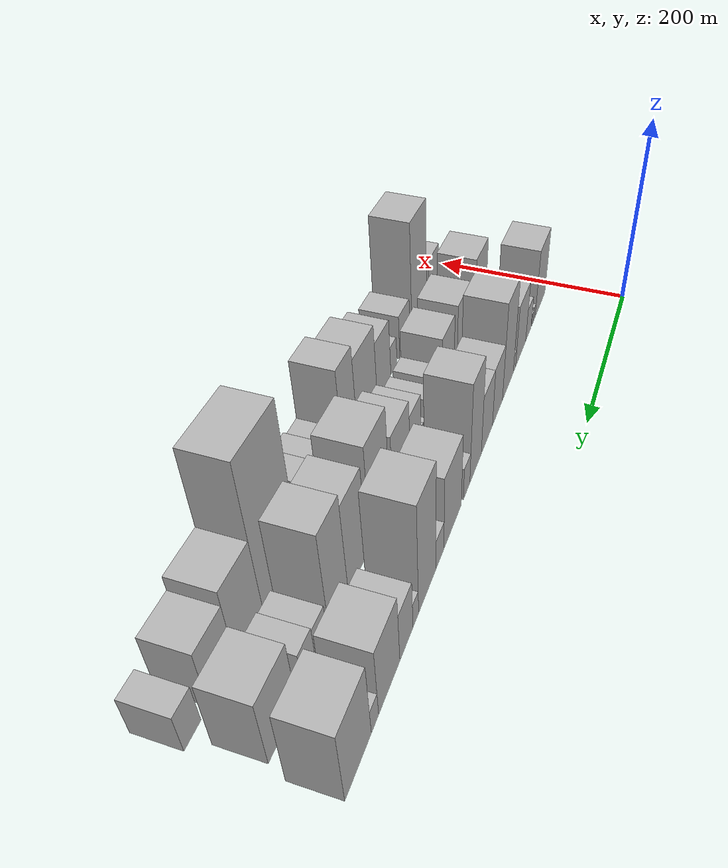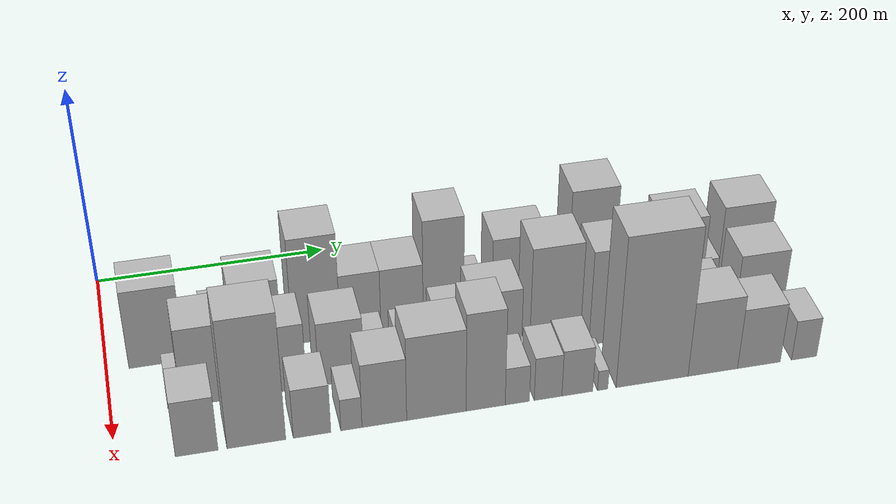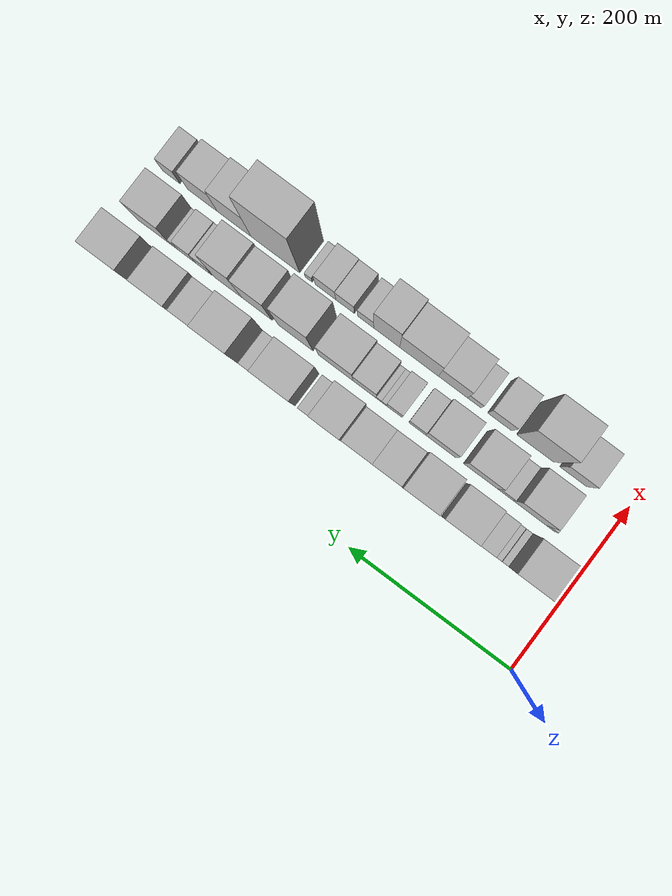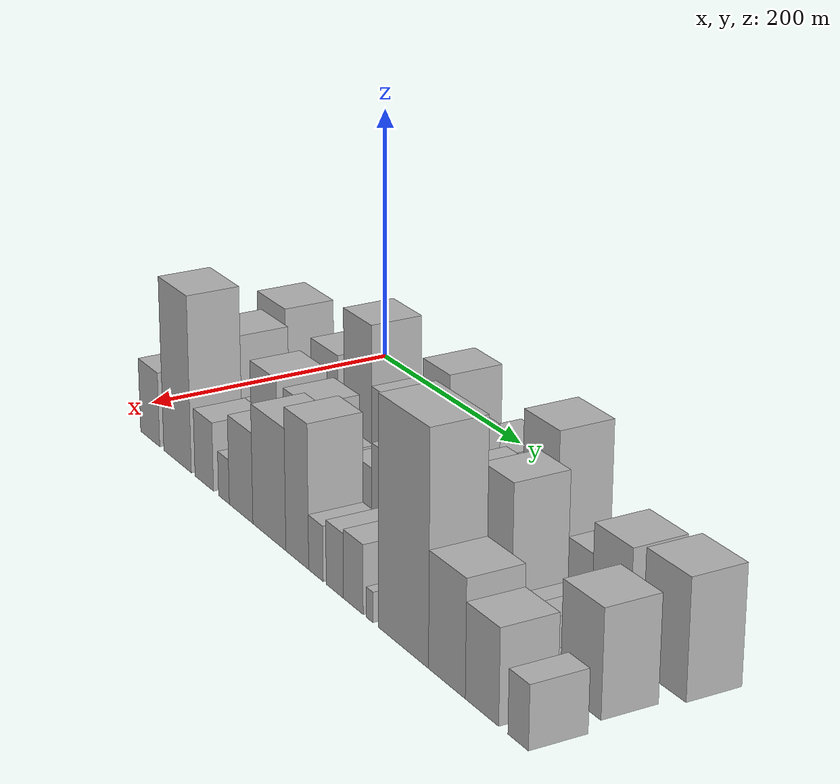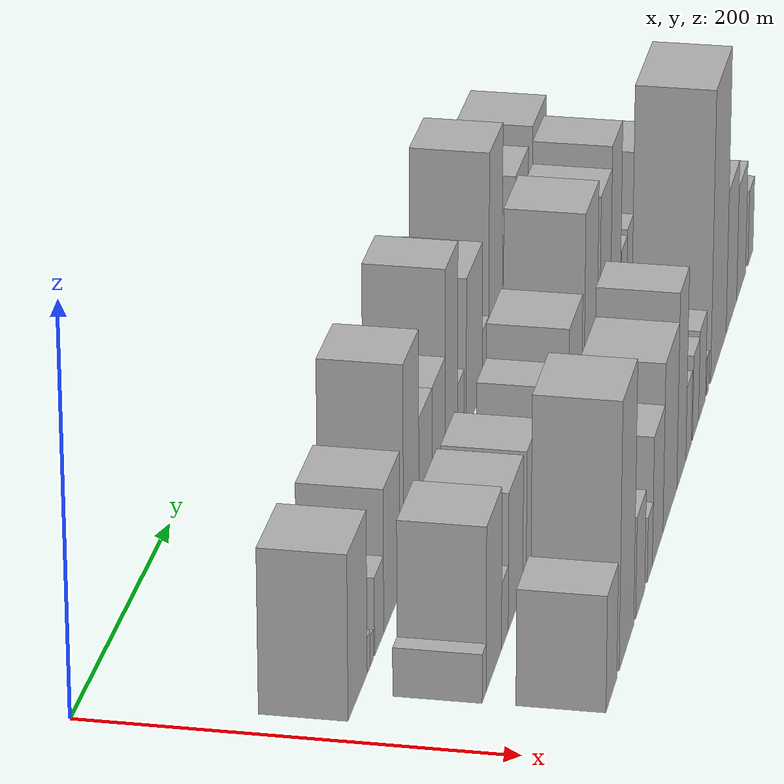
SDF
<sdf version="1.6">
 <world name="default">
  <model name="building_17">
   <static>1</static>
   <pose>100.0000 41.3504 0 0.000000 0.000000 0.000000</pose>
   <link name="link">
    <pose>0 0 40.50 0 0 0</pose>
    <collision name="collision"><geometry><box><size>40.0000 45.6313 81.0000</size></box></geometry></collision>
    <visual name="visual">
     <cast_shadows>0</cast_shadows>
     <geometry><box><size>40.0000 45.6313 81.0000</size></box></geometry>
     <material>
      <script>
       <uri>model://HANNAS_wall/materials/scripts</uri>
       <uri>model://HANNAS_wall/materials/textures</uri>
       <name>vrc/HANNAS_wall</name>
      </script>
     </material>
    </visual>
   </link>
  </model>
  <model name="building_18">
   <static>1</static>
   <pose>100.0000 67.9981 0 0.000000 0.000000 0.000000</pose>
   <link name="link">
    <pose>0 0 9.00 0 0 0</pose>
    <collision name="collision"><geometry><box><size>40.0000 7.6641 18.0000</size></box></geometry></collision>
    <visual name="visual">
     <cast_shadows>0</cast_shadows>
     <geometry><box><size>40.0000 7.6641 18.0000</size></box></geometry>
     <material>
      <script>
       <uri>model://HANNAS_wall/materials/scripts</uri>
       <uri>model://HANNAS_wall/materials/textures</uri>
       <name>vrc/HANNAS_wall</name>
      </script>
     </material>
    </visual>
   </link>
  </model>
  <model name="building_19">
   <static>1</static>
   <pose>100.0000 75.4089 0 0.000000 0.000000 0.000000</pose>
   <link name="link">
    <pose>0 0 7.50 0 0 0</pose>
    <collision name="collision"><geometry><box><size>40.0000 7.1576 15.0000</size></box></geometry></collision>
    <visual name="visual">
     <cast_shadows>0</cast_shadows>
     <geometry><box><size>40.0000 7.1576 15.0000</size></box></geometry>
     <material>
      <script>
       <uri>model://HANNAS_wall/materials/scripts</uri>
       <uri>model://HANNAS_wall/materials/textures</uri>
       <name>vrc/HANNAS_wall</name>
      </script>
     </material>
    </visual>
   </link>
  </model>
  <model name="building_20">
   <static>1</static>
   <pose>100.0000 93.3953 0 0.000000 0.000000 0.000000</pose>
   <link name="link">
    <pose>0 0 19.50 0 0 0</pose>
    <collision name="collision"><geometry><box><size>40.0000 22.8153 39.0000</size></box></geometry></collision>
    <visual name="visual">
     <cast_shadows>0</cast_shadows>
     <geometry><box><size>40.0000 22.8153 39.0000</size></box></geometry>
     <material>
      <script>
       <uri>model://HANNAS_wall/materials/scripts</uri>
       <uri>model://HANNAS_wall/materials/textures</uri>
       <name>vrc/HANNAS_wall</name>
      </script>
     </material>
    </visual>
   </link>
  </model>
  <model name="building_21">
   <static>1</static>
   <pose>100.0000 125.3801 0 0.000000 0.000000 0.000000</pose>
   <link name="link">
    <pose>0 0 36.00 0 0 0</pose>
    <collision name="collision"><geometry><box><size>40.0000 41.1543 72.0000</size></box></geometry></collision>
    <visual name="visual">
     <cast_shadows>0</cast_shadows>
     <geometry><box><size>40.0000 41.1543 72.0000</size></box></geometry>
     <material>
      <script>
       <uri>model://HANNAS_wall/materials/scripts</uri>
       <uri>model://HANNAS_wall/materials/textures</uri>
       <name>vrc/HANNAS_wall</name>
      </script>
     </material>
    </visual>
   </link>
  </model>
  <model name="building_22">
   <static>1</static>
   <pose>100.0000 150.4188 0 0.000000 0.000000 0.000000</pose>
   <link name="link">
    <pose>0 0 10.50 0 0 0</pose>
    <collision name="collision"><geometry><box><size>40.0000 8.9230 21.0000</size></box></geometry></collision>
    <visual name="visual">
     <cast_shadows>0</cast_shadows>
     <geometry><box><size>40.0000 8.9230 21.0000</size></box></geometry>
     <material>
      <script>
       <uri>model://HANNAS_wall/materials/scripts</uri>
       <uri>model://HANNAS_wall/materials/textures</uri>
       <name>vrc/HANNAS_wall</name>
      </script>
     </material>
    </visual>
   </link>
  </model>
  <model name="building_23">
   <static>1</static>
   <pose>100.0000 175.1559 0 0.000000 0.000000 0.000000</pose>
   <link name="link">
    <pose>0 0 55.50 0 0 0</pose>
    <collision name="collision"><geometry><box><size>40.0000 40.5513 111.0000</size></box></geometry></collision>
    <visual name="visual">
     <cast_shadows>0</cast_shadows>
     <geometry><box><size>40.0000 40.5513 111.0000</size></box></geometry>
     <material>
      <script>
       <uri>model://HANNAS_wall/materials/scripts</uri>
       <uri>model://HANNAS_wall/materials/textures</uri>
       <name>vrc/HANNAS_wall</name>
      </script>
     </material>
    </visual>
   </link>
  </model>
  <model name="building_24">
   <static>1</static>
   <pose>100.0000 212.8494 0 0.000000 0.000000 0.000000</pose>
   <link name="link">
    <pose>0 0 33.00 0 0 0</pose>
    <collision name="collision"><geometry><box><size>40.0000 34.8357 66.0000</size></box></geometry></collision>
    <visual name="visual">
     <cast_shadows>0</cast_shadows>
     <geometry><box><size>40.0000 34.8357 66.0000</size></box></geometry>
     <material>
      <script>
       <uri>model://HANNAS_wall/materials/scripts</uri>
       <uri>model://HANNAS_wall/materials/textures</uri>
       <name>vrc/HANNAS_wall</name>
      </script>
     </material>
    </visual>
   </link>
  </model>
  <model name="building_25">
   <static>1</static>
   <pose>100.0000 248.5443 0 0.000000 0.000000 0.000000</pose>
   <link name="link">
    <pose>0 0 33.00 0 0 0</pose>
    <collision name="collision"><geometry><box><size>40.0000 36.5541 66.0000</size></box></geometry></collision>
    <visual name="visual">
     <cast_shadows>0</cast_shadows>
     <geometry><box><size>40.0000 36.5541 66.0000</size></box></geometry>
     <material>
      <script>
       <uri>model://HANNAS_wall/materials/scripts</uri>
       <uri>model://HANNAS_wall/materials/textures</uri>
       <name>vrc/HANNAS_wall</name>
      </script>
     </material>
    </visual>
   </link>
  </model>
  <model name="building_26">
   <static>1</static>
   <pose>100.0000 284.4584 0 0.000000 0.000000 0.000000</pose>
   <link name="link">
    <pose>0 0 55.50 0 0 0</pose>
    <collision name="collision"><geometry><box><size>40.0000 35.2741 111.0000</size></box></geometry></collision>
    <visual name="visual">
     <cast_shadows>0</cast_shadows>
     <geometry><box><size>40.0000 35.2741 111.0000</size></box></geometry>
     <material>
      <script>
       <uri>model://HANNAS_wall/materials/scripts</uri>
       <uri>model://HANNAS_wall/materials/textures</uri>
       <name>vrc/HANNAS_wall</name>
      </script>
     </material>
    </visual>
   </link>
  </model>
  <model name="building_27">
   <static>1</static>
   <pose>100.0000 311.3756 0 0.000000 0.000000 0.000000</pose>
   <link name="link">
    <pose>0 0 18.00 0 0 0</pose>
    <collision name="collision"><geometry><box><size>40.0000 18.5601 36.0000</size></box></geometry></collision>
    <visual name="visual">
     <cast_shadows>0</cast_shadows>
     <geometry><box><size>40.0000 18.5601 36.0000</size></box></geometry>
     <material>
      <script>
       <uri>model://HANNAS_wall/materials/scripts</uri>
       <uri>model://HANNAS_wall/materials/textures</uri>
       <name>vrc/HANNAS_wall</name>
      </script>
     </material>
    </visual>
   </link>
  </model>
  <model name="building_28">
   <static>1</static>
   <pose>100.0000 350.1143 0 0.000000 0.000000 0.000000</pose>
   <link name="link">
    <pose>0 0 40.50 0 0 0</pose>
    <collision name="collision"><geometry><box><size>40.0000 46.9174 81.0000</size></box></geometry></collision>
    <visual name="visual">
     <cast_shadows>0</cast_shadows>
     <geometry><box><size>40.0000 46.9174 81.0000</size></box></geometry>
     <material>
      <script>
       <uri>model://HANNAS_wall/materials/scripts</uri>
       <uri>model://HANNAS_wall/materials/textures</uri>
       <name>vrc/HANNAS_wall</name>
      </script>
     </material>
    </visual>
   </link>
  </model>
  <model name="building_29">
   <static>1</static>
   <pose>100.0000 383.4061 0 0.000000 0.000000 0.000000</pose>
   <link name="link">
    <pose>0 0 16.50 0 0 0</pose>
    <collision name="collision"><geometry><box><size>40.0000 19.6661 33.0000</size></box></geometry></collision>
    <visual name="visual">
     <cast_shadows>0</cast_shadows>
     <geometry><box><size>40.0000 19.6661 33.0000</size></box></geometry>
     <material>
      <script>
       <uri>model://HANNAS_wall/materials/scripts</uri>
       <uri>model://HANNAS_wall/materials/textures</uri>
       <name>vrc/HANNAS_wall</name>
      </script>
     </material>
    </visual>
   </link>
  </model>
  <model name="building_30">
   <static>1</static>
   <pose>100.0000 413.8622 0 0.000000 0.000000 0.000000</pose>
   <link name="link">
    <pose>0 0 60.00 0 0 0</pose>
    <collision name="collision"><geometry><box><size>40.0000 41.2460 120.0000</size></box></geometry></collision>
    <visual name="visual">
     <cast_shadows>0</cast_shadows>
     <geometry><box><size>40.0000 41.2460 120.0000</size></box></geometry>
     <material>
      <script>
       <uri>model://HANNAS_wall/materials/scripts</uri>
       <uri>model://HANNAS_wall/materials/textures</uri>
       <name>vrc/HANNAS_wall</name>
      </script>
     </material>
    </visual>
   </link>
  </model>
  <model name="building_31">
   <static>1</static>
   <pose>100.0000 440.7601 0 0.000000 0.000000 0.000000</pose>
   <link name="link">
    <pose>0 0 13.50 0 0 0</pose>
    <collision name="collision"><geometry><box><size>40.0000 12.5497 27.0000</size></box></geometry></collision>
    <visual name="visual">
     <cast_shadows>0</cast_shadows>
     <geometry><box><size>40.0000 12.5497 27.0000</size></box></geometry>
     <material>
      <script>
       <uri>model://HANNAS_wall/materials/scripts</uri>
       <uri>model://HANNAS_wall/materials/textures</uri>
       <name>vrc/HANNAS_wall</name>
      </script>
     </material>
    </visual>
   </link>
  </model>
  <model name="building_32">
   <static>1</static>
   <pose>100.0000 460.9115 0 0.000000 0.000000 0.000000</pose>
   <link name="link">
    <pose>0 0 27.00 0 0 0</pose>
    <collision name="collision"><geometry><box><size>40.0000 27.7532 54.0000</size></box></geometry></collision>
    <visual name="visual">
     <cast_shadows>0</cast_shadows>
     <geometry><box><size>40.0000 27.7532 54.0000</size></box></geometry>
     <material>
      <script>
       <uri>model://HANNAS_wall/materials/scripts</uri>
       <uri>model://HANNAS_wall/materials/textures</uri>
       <name>vrc/HANNAS_wall</name>
      </script>
     </material>
    </visual>
   </link>
  </model>
  <model name="building_33">
   <static>1</static>
   <pose>100.0000 495.5422 0 0.000000 0.000000 0.000000</pose>
   <link name="link">
    <pose>0 0 37.50 0 0 0</pose>
    <collision name="collision"><geometry><box><size>40.0000 41.5080 75.0000</size></box></geometry></collision>
    <visual name="visual">
     <cast_shadows>0</cast_shadows>
     <geometry><box><size>40.0000 41.5080 75.0000</size></box></geometry>
     <material>
      <script>
       <uri>model://HANNAS_wall/materials/scripts</uri>
       <uri>model://HANNAS_wall/materials/textures</uri>
       <name>vrc/HANNAS_wall</name>
      </script>
     </material>
    </visual>
   </link>
  </model>
  <model name="building_34">
   <static>1</static>
   <pose>100.0000 522.9853 0 0.000000 0.000000 0.000000</pose>
   <link name="link">
    <pose>0 0 13.50 0 0 0</pose>
    <collision name="collision"><geometry><box><size>40.0000 13.3782 27.0000</size></box></geometry></collision>
    <visual name="visual">
     <cast_shadows>0</cast_shadows>
     <geometry><box><size>40.0000 13.3782 27.0000</size></box></geometry>
     <material>
      <script>
       <uri>model://HANNAS_wall/materials/scripts</uri>
       <uri>model://HANNAS_wall/materials/textures</uri>
       <name>vrc/HANNAS_wall</name>
      </script>
     </material>
    </visual>
   </link>
  </model>
  <model name="building_35">
   <static>1</static>
   <pose>100.0000 552.3369 0 0.000000 0.000000 0.000000</pose>
   <link name="link">
    <pose>0 0 40.50 0 0 0</pose>
    <collision name="collision"><geometry><box><size>40.0000 45.3250 81.0000</size></box></geometry></collision>
    <visual name="visual">
     <cast_shadows>0</cast_shadows>
     <geometry><box><size>40.0000 45.3250 81.0000</size></box></geometry>
     <material>
      <script>
       <uri>model://HANNAS_wall/materials/scripts</uri>
       <uri>model://HANNAS_wall/materials/textures</uri>
       <name>vrc/HANNAS_wall</name>
      </script>
     </material>
    </visual>
   </link>
  </model>
  <model name="building_53">
   <static>1</static>
   <pose>155.0000 50.7763 0 0.000000 0.000000 0.000000</pose>
   <link name="link">
    <pose>0 0 12.00 0 0 0</pose>
    <collision name="collision"><geometry><box><size>40.0000 10.7830 24.0000</size></box></geometry></collision>
    <visual name="visual">
     <cast_shadows>0</cast_shadows>
     <geometry><box><size>40.0000 10.7830 24.0000</size></box></geometry>
     <material>
      <script>
       <uri>model://HANNAS_wall/materials/scripts</uri>
       <uri>model://HANNAS_wall/materials/textures</uri>
       <name>vrc/HANNAS_wall</name>
      </script>
     </material>
    </visual>
   </link>
  </model>
  <model name="building_54">
   <static>1</static>
   <pose>155.0000 77.0438 0 0.000000 0.000000 0.000000</pose>
   <link name="link">
    <pose>0 0 40.50 0 0 0</pose>
    <collision name="collision"><geometry><box><size>40.0000 41.7520 81.0000</size></box></geometry></collision>
    <visual name="visual">
     <cast_shadows>0</cast_shadows>
     <geometry><box><size>40.0000 41.7520 81.0000</size></box></geometry>
     <material>
      <script>
       <uri>model://HANNAS_wall/materials/scripts</uri>
       <uri>model://HANNAS_wall/materials/textures</uri>
       <name>vrc/HANNAS_wall</name>
      </script>
     </material>
    </visual>
   </link>
  </model>
  <model name="building_55">
   <static>1</static>
   <pose>155.0000 107.2813 0 0.000000 0.000000 0.000000</pose>
   <link name="link">
    <pose>0 0 16.50 0 0 0</pose>
    <collision name="collision"><geometry><box><size>40.0000 18.7231 33.0000</size></box></geometry></collision>
    <visual name="visual">
     <cast_shadows>0</cast_shadows>
     <geometry><box><size>40.0000 18.7231 33.0000</size></box></geometry>
     <material>
      <script>
       <uri>model://HANNAS_wall/materials/scripts</uri>
       <uri>model://HANNAS_wall/materials/textures</uri>
       <name>vrc/HANNAS_wall</name>
      </script>
     </material>
    </visual>
   </link>
  </model>
  <model name="building_56">
   <static>1</static>
   <pose>155.0000 137.3394 0 0.000000 0.000000 0.000000</pose>
   <link name="link">
    <pose>0 0 34.50 0 0 0</pose>
    <collision name="collision"><geometry><box><size>40.0000 41.3932 69.0000</size></box></geometry></collision>
    <visual name="visual">
     <cast_shadows>0</cast_shadows>
     <geometry><box><size>40.0000 41.3932 69.0000</size></box></geometry>
     <material>
      <script>
       <uri>model://HANNAS_wall/materials/scripts</uri>
       <uri>model://HANNAS_wall/materials/textures</uri>
       <name>vrc/HANNAS_wall</name>
      </script>
     </material>
    </visual>
   </link>
  </model>
  <model name="building_57">
   <static>1</static>
   <pose>155.0000 186.7565 0 0.000000 0.000000 0.000000</pose>
   <link name="link">
    <pose>0 0 33.00 0 0 0</pose>
    <collision name="collision"><geometry><box><size>40.0000 37.4410 66.0000</size></box></geometry></collision>
    <visual name="visual">
     <cast_shadows>0</cast_shadows>
     <geometry><box><size>40.0000 37.4410 66.0000</size></box></geometry>
     <material>
      <script>
       <uri>model://HANNAS_wall/materials/scripts</uri>
       <uri>model://HANNAS_wall/materials/textures</uri>
       <name>vrc/HANNAS_wall</name>
      </script>
     </material>
    </visual>
   </link>
  </model>
  <model name="building_58">
   <static>1</static>
   <pose>155.0000 215.7411 0 0.000000 0.000000 0.000000</pose>
   <link name="link">
    <pose>0 0 18.00 0 0 0</pose>
    <collision name="collision"><geometry><box><size>40.0000 20.5282 36.0000</size></box></geometry></collision>
    <visual name="visual">
     <cast_shadows>0</cast_shadows>
     <geometry><box><size>40.0000 20.5282 36.0000</size></box></geometry>
     <material>
      <script>
       <uri>model://HANNAS_wall/materials/scripts</uri>
       <uri>model://HANNAS_wall/materials/textures</uri>
       <name>vrc/HANNAS_wall</name>
      </script>
     </material>
    </visual>
   </link>
  </model>
  <model name="building_59">
   <static>1</static>
   <pose>155.0000 243.7675 0 0.000000 0.000000 0.000000</pose>
   <link name="link">
    <pose>0 0 18.00 0 0 0</pose>
    <collision name="collision"><geometry><box><size>40.0000 19.5246 36.0000</size></box></geometry></collision>
    <visual name="visual">
     <cast_shadows>0</cast_shadows>
     <geometry><box><size>40.0000 19.5246 36.0000</size></box></geometry>
     <material>
      <script>
       <uri>model://HANNAS_wall/materials/scripts</uri>
       <uri>model://HANNAS_wall/materials/textures</uri>
       <name>vrc/HANNAS_wall</name>
      </script>
     </material>
    </visual>
   </link>
  </model>
  <model name="building_60">
   <static>1</static>
   <pose>155.0000 256.6821 0 0.000000 0.000000 0.000000</pose>
   <link name="link">
    <pose>0 0 7.50 0 0 0</pose>
    <collision name="collision"><geometry><box><size>40.0000 6.3046 15.0000</size></box></geometry></collision>
    <visual name="visual">
     <cast_shadows>0</cast_shadows>
     <geometry><box><size>40.0000 6.3046 15.0000</size></box></geometry>
     <material>
      <script>
       <uri>model://HANNAS_wall/materials/scripts</uri>
       <uri>model://HANNAS_wall/materials/textures</uri>
       <name>vrc/HANNAS_wall</name>
      </script>
     </material>
    </visual>
   </link>
  </model>
  <model name="building_61">
   <static>1</static>
   <pose>155.0000 263.1571 0 0.000000 0.000000 0.000000</pose>
   <link name="link">
    <pose>0 0 7.50 0 0 0</pose>
    <collision name="collision"><geometry><box><size>40.0000 6.6452 15.0000</size></box></geometry></collision>
    <visual name="visual">
     <cast_shadows>0</cast_shadows>
     <geometry><box><size>40.0000 6.6452 15.0000</size></box></geometry>
     <material>
      <script>
       <uri>model://HANNAS_wall/materials/scripts</uri>
       <uri>model://HANNAS_wall/materials/textures</uri>
       <name>vrc/HANNAS_wall</name>
      </script>
     </material>
    </visual>
   </link>
  </model>
  <model name="building_62">
   <static>1</static>
   <pose>155.0000 280.9805 0 0.000000 0.000000 0.000000</pose>
   <link name="link">
    <pose>0 0 27.00 0 0 0</pose>
    <collision name="collision"><geometry><box><size>40.0000 29.0016 54.0000</size></box></geometry></collision>
    <visual name="visual">
     <cast_shadows>0</cast_shadows>
     <geometry><box><size>40.0000 29.0016 54.0000</size></box></geometry>
     <material>
      <script>
       <uri>model://HANNAS_wall/materials/scripts</uri>
       <uri>model://HANNAS_wall/materials/textures</uri>
       <name>vrc/HANNAS_wall</name>
      </script>
     </material>
    </visual>
   </link>
  </model>
  <model name="building_63">
   <static>1</static>
   <pose>155.0000 316.9721 0 0.000000 0.000000 0.000000</pose>
   <link name="link">
    <pose>0 0 36.00 0 0 0</pose>
    <collision name="collision"><geometry><box><size>40.0000 42.9817 72.0000</size></box></geometry></collision>
    <visual name="visual">
     <cast_shadows>0</cast_shadows>
     <geometry><box><size>40.0000 42.9817 72.0000</size></box></geometry>
     <material>
      <script>
       <uri>model://HANNAS_wall/materials/scripts</uri>
       <uri>model://HANNAS_wall/materials/textures</uri>
       <name>vrc/HANNAS_wall</name>
      </script>
     </material>
    </visual>
   </link>
  </model>
  <model name="building_64">
   <static>1</static>
   <pose>155.0000 367.2405 0 0.000000 0.000000 0.000000</pose>
   <link name="link">
    <pose>0 0 55.50 0 0 0</pose>
    <collision name="collision"><geometry><box><size>40.0000 43.5550 111.0000</size></box></geometry></collision>
    <visual name="visual">
     <cast_shadows>0</cast_shadows>
     <geometry><box><size>40.0000 43.5550 111.0000</size></box></geometry>
     <material>
      <script>
       <uri>model://HANNAS_wall/materials/scripts</uri>
       <uri>model://HANNAS_wall/materials/textures</uri>
       <name>vrc/HANNAS_wall</name>
      </script>
     </material>
    </visual>
   </link>
  </model>
  <model name="building_65">
   <static>1</static>
   <pose>155.0000 415.7802 0 0.000000 0.000000 0.000000</pose>
   <link name="link">
    <pose>0 0 49.50 0 0 0</pose>
    <collision name="collision"><geometry><box><size>40.0000 37.5245 99.0000</size></box></geometry></collision>
    <visual name="visual">
     <cast_shadows>0</cast_shadows>
     <geometry><box><size>40.0000 37.5245 99.0000</size></box></geometry>
     <material>
      <script>
       <uri>model://HANNAS_wall/materials/scripts</uri>
       <uri>model://HANNAS_wall/materials/textures</uri>
       <name>vrc/HANNAS_wall</name>
      </script>
     </material>
    </visual>
   </link>
  </model>
  <model name="building_66">
   <static>1</static>
   <pose>155.0000 452.3669 0 0.000000 0.000000 0.000000</pose>
   <link name="link">
    <pose>0 0 55.50 0 0 0</pose>
    <collision name="collision"><geometry><box><size>40.0000 35.6487 111.0000</size></box></geometry></collision>
    <visual name="visual">
     <cast_shadows>0</cast_shadows>
     <geometry><box><size>40.0000 35.6487 111.0000</size></box></geometry>
     <material>
      <script>
       <uri>model://HANNAS_wall/materials/scripts</uri>
       <uri>model://HANNAS_wall/materials/textures</uri>
       <name>vrc/HANNAS_wall</name>
      </script>
     </material>
    </visual>
   </link>
  </model>
  <model name="building_67">
   <static>1</static>
   <pose>155.0000 483.5030 0 0.000000 0.000000 0.000000</pose>
   <link name="link">
    <pose>0 0 19.50 0 0 0</pose>
    <collision name="collision"><geometry><box><size>40.0000 20.6237 39.0000</size></box></geometry></collision>
    <visual name="visual">
     <cast_shadows>0</cast_shadows>
     <geometry><box><size>40.0000 20.6237 39.0000</size></box></geometry>
     <material>
      <script>
       <uri>model://HANNAS_wall/materials/scripts</uri>
       <uri>model://HANNAS_wall/materials/textures</uri>
       <name>vrc/HANNAS_wall</name>
      </script>
     </material>
    </visual>
   </link>
  </model>
  <model name="building_68">
   <static>1</static>
   <pose>155.0000 504.5887 0 0.000000 0.000000 0.000000</pose>
   <link name="link">
    <pose>0 0 21.00 0 0 0</pose>
    <collision name="collision"><geometry><box><size>40.0000 21.5476 42.0000</size></box></geometry></collision>
    <visual name="visual">
     <cast_shadows>0</cast_shadows>
     <geometry><box><size>40.0000 21.5476 42.0000</size></box></geometry>
     <material>
      <script>
       <uri>model://HANNAS_wall/materials/scripts</uri>
       <uri>model://HANNAS_wall/materials/textures</uri>
       <name>vrc/HANNAS_wall</name>
      </script>
     </material>
    </visual>
   </link>
  </model>
  <model name="building_69">
   <static>1</static>
   <pose>155.0000 520.3878 0 0.000000 0.000000 0.000000</pose>
   <link name="link">
    <pose>0 0 10.50 0 0 0</pose>
    <collision name="collision"><geometry><box><size>40.0000 10.0505 21.0000</size></box></geometry></collision>
    <visual name="visual">
     <cast_shadows>0</cast_shadows>
     <geometry><box><size>40.0000 10.0505 21.0000</size></box></geometry>
     <material>
      <script>
       <uri>model://HANNAS_wall/materials/scripts</uri>
       <uri>model://HANNAS_wall/materials/textures</uri>
       <name>vrc/HANNAS_wall</name>
      </script>
     </material>
    </visual>
   </link>
  </model>
  <model name="building_70">
   <static>1</static>
   <pose>155.0000 546.9804 0 0.000000 0.000000 0.000000</pose>
   <link name="link">
    <pose>0 0 36.00 0 0 0</pose>
    <collision name="collision"><geometry><box><size>40.0000 43.1348 72.0000</size></box></geometry></collision>
    <visual name="visual">
     <cast_shadows>0</cast_shadows>
     <geometry><box><size>40.0000 43.1348 72.0000</size></box></geometry>
     <material>
      <script>
       <uri>model://HANNAS_wall/materials/scripts</uri>
       <uri>model://HANNAS_wall/materials/textures</uri>
       <name>vrc/HANNAS_wall</name>
      </script>
     </material>
    </visual>
   </link>
  </model>
  <model name="building_90">
   <static>1</static>
   <pose>210.0000 62.6021 0 0.000000 0.000000 0.000000</pose>
   <link name="link">
    <pose>0 0 28.50 0 0 0</pose>
    <collision name="collision"><geometry><box><size>40.0000 33.4263 57.0000</size></box></geometry></collision>
    <visual name="visual">
     <cast_shadows>0</cast_shadows>
     <geometry><box><size>40.0000 33.4263 57.0000</size></box></geometry>
     <material>
      <script>
       <uri>model://HANNAS_wall/materials/scripts</uri>
       <uri>model://HANNAS_wall/materials/textures</uri>
       <name>vrc/HANNAS_wall</name>
      </script>
     </material>
    </visual>
   </link>
  </model>
  <model name="building_91">
   <static>1</static>
   <pose>210.0000 109.5223 0 0.000000 0.000000 0.000000</pose>
   <link name="link">
    <pose>0 0 66.00 0 0 0</pose>
    <collision name="collision"><geometry><box><size>40.0000 46.4140 132.0000</size></box></geometry></collision>
    <visual name="visual">
     <cast_shadows>0</cast_shadows>
     <geometry><box><size>40.0000 46.4140 132.0000</size></box></geometry>
     <material>
      <script>
       <uri>model://HANNAS_wall/materials/scripts</uri>
       <uri>model://HANNAS_wall/materials/textures</uri>
       <name>vrc/HANNAS_wall</name>
      </script>
     </material>
    </visual>
   </link>
  </model>
  <model name="building_92">
   <static>1</static>
   <pose>210.0000 153.7270 0 0.000000 0.000000 0.000000</pose>
   <link name="link">
    <pose>0 0 25.50 0 0 0</pose>
    <collision name="collision"><geometry><box><size>40.0000 29.9955 51.0000</size></box></geometry></collision>
    <visual name="visual">
     <cast_shadows>0</cast_shadows>
     <geometry><box><size>40.0000 29.9955 51.0000</size></box></geometry>
     <material>
      <script>
       <uri>model://HANNAS_wall/materials/scripts</uri>
       <uri>model://HANNAS_wall/materials/textures</uri>
       <name>vrc/HANNAS_wall</name>
      </script>
     </material>
    </visual>
   </link>
  </model>
  <model name="building_93">
   <static>1</static>
   <pose>210.0000 185.2210 0 0.000000 0.000000 0.000000</pose>
   <link name="link">
    <pose>0 0 16.50 0 0 0</pose>
    <collision name="collision"><geometry><box><size>40.0000 16.9924 33.0000</size></box></geometry></collision>
    <visual name="visual">
     <cast_shadows>0</cast_shadows>
     <geometry><box><size>40.0000 16.9924 33.0000</size></box></geometry>
     <material>
      <script>
       <uri>model://HANNAS_wall/materials/scripts</uri>
       <uri>model://HANNAS_wall/materials/textures</uri>
       <name>vrc/HANNAS_wall</name>
      </script>
     </material>
    </visual>
   </link>
  </model>
  <model name="building_94">
   <static>1</static>
   <pose>210.0000 211.8269 0 0.000000 0.000000 0.000000</pose>
   <link name="link">
    <pose>0 0 33.00 0 0 0</pose>
    <collision name="collision"><geometry><box><size>40.0000 36.2194 66.0000</size></box></geometry></collision>
    <visual name="visual">
     <cast_shadows>0</cast_shadows>
     <geometry><box><size>40.0000 36.2194 66.0000</size></box></geometry>
     <material>
      <script>
       <uri>model://HANNAS_wall/materials/scripts</uri>
       <uri>model://HANNAS_wall/materials/textures</uri>
       <name>vrc/HANNAS_wall</name>
      </script>
     </material>
    </visual>
   </link>
  </model>
  <model name="building_95">
   <static>1</static>
   <pose>210.0000 254.2156 0 0.000000 0.000000 0.000000</pose>
   <link name="link">
    <pose>0 0 43.50 0 0 0</pose>
    <collision name="collision"><geometry><box><size>40.0000 48.5581 87.0000</size></box></geometry></collision>
    <visual name="visual">
     <cast_shadows>0</cast_shadows>
     <geometry><box><size>40.0000 48.5581 87.0000</size></box></geometry>
     <material>
      <script>
       <uri>model://HANNAS_wall/materials/scripts</uri>
       <uri>model://HANNAS_wall/materials/textures</uri>
       <name>vrc/HANNAS_wall</name>
      </script>
     </material>
    </visual>
   </link>
  </model>
  <model name="building_96">
   <static>1</static>
   <pose>210.0000 294.6759 0 0.000000 0.000000 0.000000</pose>
   <link name="link">
    <pose>0 0 51.00 0 0 0</pose>
    <collision name="collision"><geometry><box><size>40.0000 32.3625 102.0000</size></box></geometry></collision>
    <visual name="visual">
     <cast_shadows>0</cast_shadows>
     <geometry><box><size>40.0000 32.3625 102.0000</size></box></geometry>
     <material>
      <script>
       <uri>model://HANNAS_wall/materials/scripts</uri>
       <uri>model://HANNAS_wall/materials/textures</uri>
       <name>vrc/HANNAS_wall</name>
      </script>
     </material>
    </visual>
   </link>
  </model>
  <model name="building_97">
   <static>1</static>
   <pose>210.0000 320.9465 0 0.000000 0.000000 0.000000</pose>
   <link name="link">
    <pose>0 0 19.50 0 0 0</pose>
    <collision name="collision"><geometry><box><size>40.0000 20.1786 39.0000</size></box></geometry></collision>
    <visual name="visual">
     <cast_shadows>0</cast_shadows>
     <geometry><box><size>40.0000 20.1786 39.0000</size></box></geometry>
     <material>
      <script>
       <uri>model://HANNAS_wall/materials/scripts</uri>
       <uri>model://HANNAS_wall/materials/textures</uri>
       <name>vrc/HANNAS_wall</name>
      </script>
     </material>
    </visual>
   </link>
  </model>
  <model name="building_98">
   <static>1</static>
   <pose>210.0000 346.6202 0 0.000000 0.000000 0.000000</pose>
   <link name="link">
    <pose>0 0 22.50 0 0 0</pose>
    <collision name="collision"><geometry><box><size>40.0000 23.1689 45.0000</size></box></geometry></collision>
    <visual name="visual">
     <cast_shadows>0</cast_shadows>
     <geometry><box><size>40.0000 23.1689 45.0000</size></box></geometry>
     <material>
      <script>
       <uri>model://HANNAS_wall/materials/scripts</uri>
       <uri>model://HANNAS_wall/materials/textures</uri>
       <name>vrc/HANNAS_wall</name>
      </script>
     </material>
    </visual>
   </link>
  </model>
  <model name="building_99">
   <static>1</static>
   <pose>210.0000 371.2433 0 0.000000 0.000000 0.000000</pose>
   <link name="link">
    <pose>0 0 24.00 0 0 0</pose>
    <collision name="collision"><geometry><box><size>40.0000 26.0772 48.0000</size></box></geometry></collision>
    <visual name="visual">
     <cast_shadows>0</cast_shadows>
     <geometry><box><size>40.0000 26.0772 48.0000</size></box></geometry>
     <material>
      <script>
       <uri>model://HANNAS_wall/materials/scripts</uri>
       <uri>model://HANNAS_wall/materials/textures</uri>
       <name>vrc/HANNAS_wall</name>
      </script>
     </material>
    </visual>
   </link>
  </model>
  <model name="building_100">
   <static>1</static>
   <pose>210.0000 392.6497 0 0.000000 0.000000 0.000000</pose>
   <link name="link">
    <pose>0 0 10.50 0 0 0</pose>
    <collision name="collision"><geometry><box><size>40.0000 8.7354 21.0000</size></box></geometry></collision>
    <visual name="visual">
     <cast_shadows>0</cast_shadows>
     <geometry><box><size>40.0000 8.7354 21.0000</size></box></geometry>
     <material>
      <script>
       <uri>model://HANNAS_wall/materials/scripts</uri>
       <uri>model://HANNAS_wall/materials/textures</uri>
       <name>vrc/HANNAS_wall</name>
      </script>
     </material>
    </visual>
   </link>
  </model>
  <model name="building_101">
   <static>1</static>
   <pose>210.0000 434.8132 0 0.000000 0.000000 0.000000</pose>
   <link name="link">
    <pose>0 0 78.00 0 0 0</pose>
    <collision name="collision"><geometry><box><size>40.0000 61.5916 156.0000</size></box></geometry></collision>
    <visual name="visual">
     <cast_shadows>0</cast_shadows>
     <geometry><box><size>40.0000 61.5916 156.0000</size></box></geometry>
     <material>
      <script>
       <uri>model://HANNAS_wall/materials/scripts</uri>
       <uri>model://HANNAS_wall/materials/textures</uri>
       <name>vrc/HANNAS_wall</name>
      </script>
     </material>
    </visual>
   </link>
  </model>
  <model name="building_102">
   <static>1</static>
   <pose>210.0000 487.0706 0 0.000000 0.000000 0.000000</pose>
   <link name="link">
    <pose>0 0 39.00 0 0 0</pose>
    <collision name="collision"><geometry><box><size>40.0000 42.9233 78.0000</size></box></geometry></collision>
    <visual name="visual">
     <cast_shadows>0</cast_shadows>
     <geometry><box><size>40.0000 42.9233 78.0000</size></box></geometry>
     <material>
      <script>
       <uri>model://HANNAS_wall/materials/scripts</uri>
       <uri>model://HANNAS_wall/materials/textures</uri>
       <name>vrc/HANNAS_wall</name>
      </script>
     </material>
    </visual>
   </link>
  </model>
  <model name="building_103">
   <static>1</static>
   <pose>210.0000 527.2315 0 0.000000 0.000000 0.000000</pose>
   <link name="link">
    <pose>0 0 31.50 0 0 0</pose>
    <collision name="collision"><geometry><box><size>40.0000 37.3985 63.0000</size></box></geometry></collision>
    <visual name="visual">
     <cast_shadows>0</cast_shadows>
     <geometry><box><size>40.0000 37.3985 63.0000</size></box></geometry>
     <material>
      <script>
       <uri>model://HANNAS_wall/materials/scripts</uri>
       <uri>model://HANNAS_wall/materials/textures</uri>
       <name>vrc/HANNAS_wall</name>
      </script>
     </material>
    </visual>
   </link>
  </model>
  <model name="building_104">
   <static>1</static>
   <pose>210.0000 566.9558 0 0.000000 0.000000 0.000000</pose>
   <link name="link">
    <pose>0 0 21.00 0 0 0</pose>
    <collision name="collision"><geometry><box><size>40.0000 22.0500 42.0000</size></box></geometry></collision>
    <visual name="visual">
     <cast_shadows>0</cast_shadows>
     <geometry><box><size>40.0000 22.0500 42.0000</size></box></geometry>
     <material>
      <script>
       <uri>model://HANNAS_wall/materials/scripts</uri>
       <uri>model://HANNAS_wall/materials/textures</uri>
       <name>vrc/HANNAS_wall</name>
      </script>
     </material>
    </visual>
   </link>
  </model>
 </world>
</sdf>
